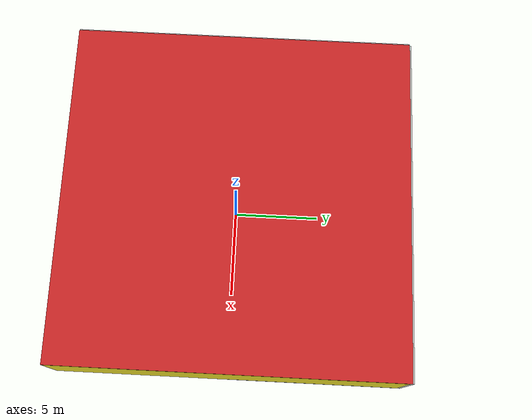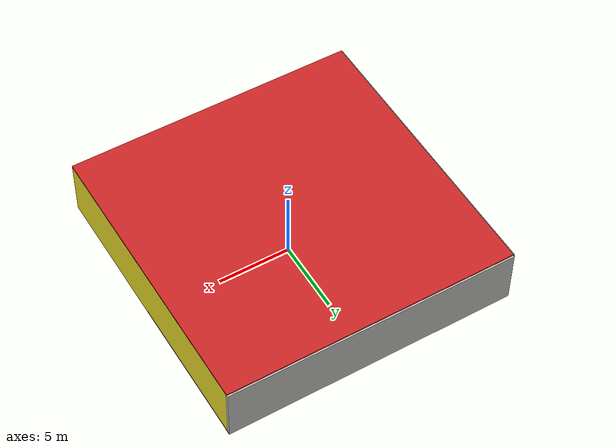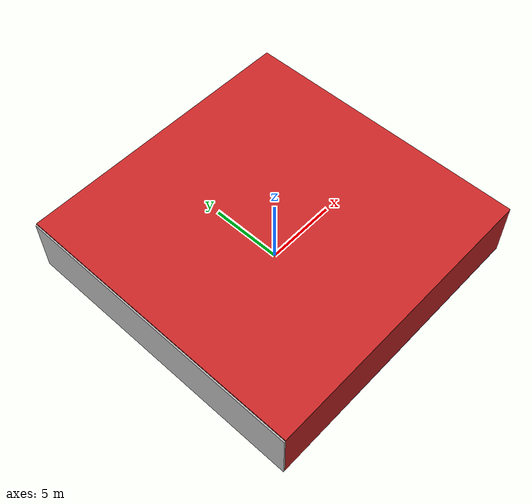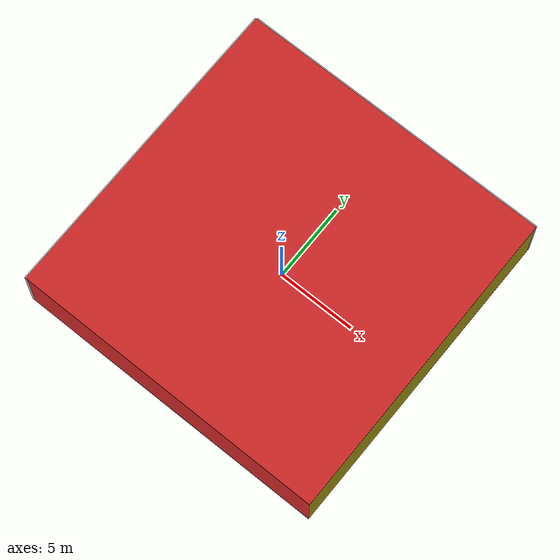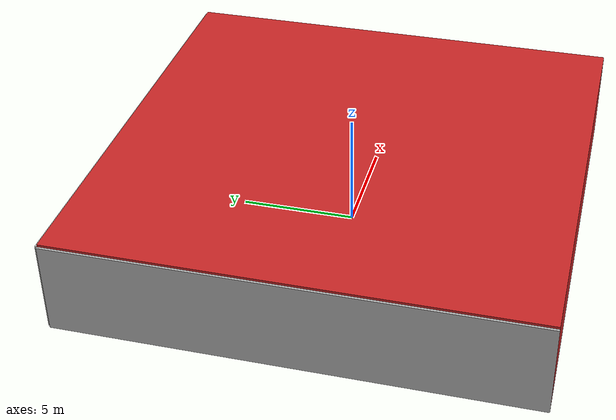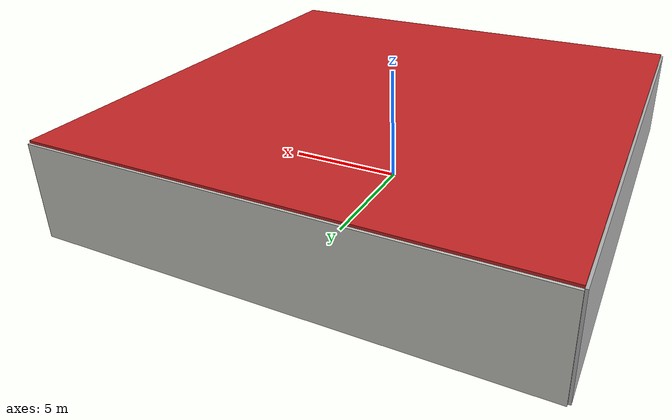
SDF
<sdf version="1.4">
 <world name="default">
  <physics type="ode">
   <max_step_size>0.001</max_step_size>
   <real_time_factor>1</real_time_factor>
   <real_time_update_rate>1000</real_time_update_rate>
   <gravity>0 0 -9.8</gravity>
  </physics>
  <scene><ambient>0.4 0.4 0.4 1</ambient><background>0.7 0.7 0.7 1</background><shadows>1</shadows></scene>
  <model name="Surrounding">
   <static>1</static>
   <link name="Ceiling">
    <collision name="Ceiling_Collision"><geometry><box><size>20 20 0.1</size></box></geometry></collision>
    <visual name="Ceiling_Visual">
     <geometry><box><size>20 20 0.1</size></box></geometry>
     <material>
      <script><uri>file://media/materials/scripts/gazebo.material</uri><name>Gazebo/Red</name></script>
     </material>
    </visual>
    <pose>0 0 4.05 0 0 0</pose>
   </link>
   <link name="Wall_South">
    <collision name="Wall_South_Collision">
     <geometry><box><size>20 0 4</size></box></geometry>
     <pose>0 0 2 0 -0 0</pose>
    </collision>
    <visual name="Wall_South_Visual">
     <pose>0 0 2 0 -0 0</pose>
     <geometry><box><size>20 0 4</size></box></geometry>
     <material>
      <script><uri>file://media/materials/scripts/gazebo.material</uri><name>Gazebo/RedGlow</name></script>
     </material>
    </visual>
    <velocity_decay><linear>0</linear><angular>0</angular></velocity_decay>
    <pose>0 -10 0 0 -0 0</pose>
   </link>
   <link name="Wall_East">
    <collision name="Wall_21_Collision">
     <geometry><box><size>20 0 4</size></box></geometry>
     <pose>0 0 2 0 -0 0</pose>
    </collision>
    <visual name="Wall_21_Visual">
     <pose>0 0 2 0 -0 0</pose>
     <geometry><box><size>20 0 4</size></box></geometry>
     <material>
      <script><uri>file://media/materials/scripts/gazebo.material</uri><name>Gazebo/Yellow</name></script>
     </material>
    </visual>
    <velocity_decay><linear>0</linear><angular>0</angular></velocity_decay>
    <pose>10 0 0 0 -0 1.5708</pose>
   </link>
   <link name="Wall_North">
    <collision name="Wall_22_Collision">
     <geometry><box><size>20 0.2 4</size></box></geometry>
     <pose>0 0 2 0 -0 0</pose>
    </collision>
    <visual name="Wall_22_Visual">
     <pose>0 0 2 0 -0 0</pose>
     <geometry><box><size>20 0.2 4</size></box></geometry>
     <material>
      <script><uri>file://media/materials/scripts/gazebo.material</uri><name>Gazebo/CeilingTiled</name></script>
     </material>
    </visual>
    <velocity_decay><linear>0</linear><angular>0</angular></velocity_decay>
    <pose>0 10 0 0 -0 0</pose>
   </link>
   <link name="Wall_West">
    <collision name="Wall_23_Collision">
     <geometry><box><size>20 0.2 4</size></box></geometry>
     <pose>0 0 2 0 -0 0</pose>
    </collision>
    <visual name="Wall_23_Visual">
     <pose>0 0 2 0 -0 0</pose>
     <geometry><box><size>20 0.2 4</size></box></geometry>
     <material>
      <script><uri>file://media/materials/scripts/gazebo.material</uri><name>Gazebo/LightOn</name></script>
     </material>
    </visual>
    <velocity_decay><linear>0</linear><angular>0</angular></velocity_decay>
    <pose>-10 0 0 0 0 -1.5708</pose>
   </link>
   <link name="Ground_link">
    <collision name="collision">
     <pose>0 0 .05 0 -0 0</pose>
     <geometry><box><size>20 20 0.1</size></box></geometry>
    </collision>
    <visual name="visual">
     <pose>0 0 .05 0 -0 0</pose>
     <geometry><box><size>20 20 0.1</size></box></geometry>
     <material>
      <script><uri>file://media/materials/scripts/gazebo.material</uri><name>Gazebo/BlueTransparent</name></script>
     </material>
    </visual>
   </link>
   <static>1</static>
  </model>
  <spherical_coordinates>
   <surface_model>EARTH_WGS84</surface_model>
   <latitude_deg>0</latitude_deg>
   <longitude_deg>0</longitude_deg>
   <elevation>0</elevation>
   <heading_deg>0</heading_deg>
  </spherical_coordinates>
  <light name="lightball_0" type="diffuse">
   <diffuse>0.8 0.8 0.8 1</diffuse>
   <specular>0.2 0.2 0.2 1</specular>
   <attenuation>
    <range>100</range>
    <constant>0.7</constant>
    <linear>0.01</linear>
    <quadratic>0.001</quadratic>
   </attenuation>
   <direction>-0.5 0.1 -0.9</direction>
   <pose>0.153282291295 -3.83142051962 2.03434788212 0 0 0</pose>
  </light>
  <light name="lightball_1" type="diffuse">
   <diffuse>0.8 0.8 0.8 1</diffuse>
   <specular>0.2 0.2 0.2 1</specular>
   <attenuation>
    <range>100</range>
    <constant>0.7</constant>
    <linear>0.01</linear>
    <quadratic>0.001</quadratic>
   </attenuation>
   <direction>-0.5 0.1 -0.9</direction>
   <pose>-9.36720161813 -5.68489553909 3.63640859677 0 0 0</pose>
  </light>
  <light name="lightball_2" type="diffuse">
   <diffuse>0.8 0.8 0.8 1</diffuse>
   <specular>0.2 0.2 0.2 1</specular>
   <attenuation>
    <range>100</range>
    <constant>0.7</constant>
    <linear>0.01</linear>
    <quadratic>0.001</quadratic>
   </attenuation>
   <direction>-0.5 0.1 -0.9</direction>
   <pose>4.47040454264 -6.58586598555 1.31329977874 0 0 0</pose>
  </light>
  <light name="lightball_3" type="diffuse">
   <diffuse>0.8 0.8 0.8 1</diffuse>
   <specular>0.2 0.2 0.2 1</specular>
   <attenuation>
    <range>100</range>
    <constant>0.7</constant>
    <linear>0.01</linear>
    <quadratic>0.001</quadratic>
   </attenuation>
   <direction>-0.5 0.1 -0.9</direction>
   <pose>1.88433242353 1.6435910452 0.512219933243 0 0 0</pose>
  </light>
  <light name="lightball_4" type="diffuse">
   <diffuse>0.8 0.8 0.8 1</diffuse>
   <specular>0.2 0.2 0.2 1</specular>
   <attenuation>
    <range>100</range>
    <constant>0.7</constant>
    <linear>0.01</linear>
    <quadratic>0.001</quadratic>
   </attenuation>
   <direction>-0.5 0.1 -0.9</direction>
   <pose>2.52491092622 1.46103309826 2.60643471629 0 0 0</pose>
  </light>
  <light name="lightball_5" type="diffuse">
   <diffuse>0.8 0.8 0.8 1</diffuse>
   <specular>0.2 0.2 0.2 1</specular>
   <attenuation>
    <range>100</range>
    <constant>0.7</constant>
    <linear>0.01</linear>
    <quadratic>0.001</quadratic>
   </attenuation>
   <direction>-0.5 0.1 -0.9</direction>
   <pose>-6.4879960547 -4.42950876379 1.8557533492 0 0 0</pose>
  </light>
  <light name="lightball_6" type="diffuse">
   <diffuse>0.8 0.8 0.8 1</diffuse>
   <specular>0.2 0.2 0.2 1</specular>
   <attenuation>
    <range>100</range>
    <constant>0.7</constant>
    <linear>0.01</linear>
    <quadratic>0.001</quadratic>
   </attenuation>
   <direction>-0.5 0.1 -0.9</direction>
   <pose>-4.64576642935 9.68228363484 3.59806368324 0 0 0</pose>
  </light>
  <light name="lightball_7" type="diffuse">
   <diffuse>0.8 0.8 0.8 1</diffuse>
   <specular>0.2 0.2 0.2 1</specular>
   <attenuation>
    <range>100</range>
    <constant>0.7</constant>
    <linear>0.01</linear>
    <quadratic>0.001</quadratic>
   </attenuation>
   <direction>-0.5 0.1 -0.9</direction>
   <pose>6.54167829596 4.57623233017 1.09168828869 0 0 0</pose>
  </light>
  <light name="lightball_8" type="diffuse">
   <diffuse>0.8 0.8 0.8 1</diffuse>
   <specular>0.2 0.2 0.2 1</specular>
   <attenuation>
    <range>100</range>
    <constant>0.7</constant>
    <linear>0.01</linear>
    <quadratic>0.001</quadratic>
   </attenuation>
   <direction>-0.5 0.1 -0.9</direction>
   <pose>9.44780482611 9.68491144221 2.67501114921 0 0 0</pose>
  </light>
  <light name="lightball_9" type="diffuse">
   <diffuse>0.8 0.8 0.8 1</diffuse>
   <specular>0.2 0.2 0.2 1</specular>
   <attenuation>
    <range>100</range>
    <constant>0.7</constant>
    <linear>0.01</linear>
    <quadratic>0.001</quadratic>
   </attenuation>
   <direction>-0.5 0.1 -0.9</direction>
   <pose>1.06553507658 0.556430678714 1.43258965018 0 0 0</pose>
  </light>
  <light name="lightball_10" type="diffuse">
   <diffuse>0.8 0.8 0.8 1</diffuse>
   <specular>0.2 0.2 0.2 1</specular>
   <attenuation>
    <range>100</range>
    <constant>0.7</constant>
    <linear>0.01</linear>
    <quadratic>0.001</quadratic>
   </attenuation>
   <direction>-0.5 0.1 -0.9</direction>
   <pose>-6.4989516538 9.05310723999 2.21177377947 0 0 0</pose>
  </light>
  <light name="lightball_11" type="diffuse">
   <diffuse>0.8 0.8 0.8 1</diffuse>
   <specular>0.2 0.2 0.2 1</specular>
   <attenuation>
    <range>100</range>
    <constant>0.7</constant>
    <linear>0.01</linear>
    <quadratic>0.001</quadratic>
   </attenuation>
   <direction>-0.5 0.1 -0.9</direction>
   <pose>9.50926321248 8.25095734658 3.18299372854 0 0 0</pose>
  </light>
  <include>
   <uri>model://textured_shapes</uri>
   <pose>-7.59294960581 -1.41986581117 0 0 0 0.598881580519</pose>
  </include>
  <include>
   <uri>model://textured_shapes</uri>
   <pose>-3.75947126796 4.55035191234 0 0 0 2.730834893</pose>
  </include>
  <include>
   <uri>model://textured_shapes</uri>
   <pose>-1.47845093276 2.29853913809 0 0 0 0.544784869903</pose>
  </include>
  <include><uri>model://cabinet</uri><pose>5.27814992441 1.55228647877 0 0 0 0.596685782503</pose></include>
  <include><uri>model://cabinet</uri><pose>7.57848052059 1.1558339433 0 0 0 0.185840284085</pose></include>
 </world>
</sdf>

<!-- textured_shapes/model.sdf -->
<sdf version="1.6">
  <model name="textured_shapes">
    <pose>0 0 0.5 0 0 0</pose>
    <link name="box">
      <pose>0 -1.5 0 0 0 0</pose>
      <collision name="collision">
        <geometry>
          <box>
            <size>1 1 1</size>
          </box>
        </geometry>
      </collision>
      <visual name="visual">
        <geometry>
          <box>
            <size>1 1 1</size>
          </box>
        </geometry>
        <material>
          <script>
            <uri>model://../model_source/models/textured_shapes/materials/scripts</uri>
            <uri>model://../model_source/models/textured_shapes/materials/textures</uri>
            <name>TexturedShape/Squares</name>
          </script>
        </material>
      </visual>
    </link>
    <link name="sphere">
      <collision name="collision">
        <geometry>
          <sphere>
            <radius>0.5</radius>
          </sphere>
        </geometry>
      </collision>
      <visual name="visual">
        <geometry>
          <sphere>
            <radius>0.5</radius>
          </sphere>
        </geometry>
        <material>
          <script>
            <uri>model://../model_source/models/textured_shapes/materials/scripts</uri>
            <uri>model://../model_source/models/textured_shapes/materials/textures</uri>
            <name>TexturedShape/Squares</name>
          </script>
        </material>
      </visual>
    </link>
    <link name="cylinder">
      <pose>0 1.5 0 0 0 0</pose>
      <collision name="collision">
        <geometry>
          <cylinder>
            <radius>0.5</radius>
            <length>1</length>
          </cylinder>
        </geometry>
      </collision>
      <visual name="visual">
        <geometry>
          <cylinder>
            <radius>0.5</radius>
            <length>1</length>
          </cylinder>
        </geometry>
        <material>
          <script>
            <uri>model://../model_source/models/textured_shapes/materials/scripts</uri>
            <uri>model://../model_source/models/textured_shapes/materials/textures</uri>
            <name>TexturedShape/Squares</name>
          </script>
        </material>
      </visual>
    </link>
  </model>
</sdf>

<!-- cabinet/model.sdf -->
<sdf version="1.5">
  <model name="cabinet">
    <static>true</static>
    <link name="cabinet_bottom_plate">
      <inertial>
        <pose>0 0 -1 0 0 0</pose>
        <inertia>
          <ixx>2.050000</ixx>
          <ixy>0</ixy>
          <ixz>0</ixz>
          <iyy>2.050000</iyy>
          <iyz>0</iyz>
          <izz>2.050000</izz>
        </inertia>
        <mass>25.000000</mass>
      </inertial>
      <collision name="cabinet_bottom_plate_geom">
        <pose>0 0 0.010000 0 0 0</pose>
        <geometry>
          <box>
            <size>0.450000 0.450000 0.020000</size>
          </box>
        </geometry>
      </collision>
      <visual name="cabinet_bottom_plate_geom_visual">
        <pose>0 0 0.010000 0 0 0</pose>
        <geometry>
          <box>
            <size>0.450000 0.450000 0.020000</size>
          </box>
        </geometry>
        <material>
          <script>
            <uri>model://media/materials/scripts/gazebo.material</uri>
            <name>Gazebo/Wood</name>
          </script>
        </material>
      </visual>
      <collision name="cabinet_bottom_plate_geom_cabinet_back_plate">
        <pose>0.235000 0 0.510000 0 0 0</pose>
        <geometry>
          <box>
            <size>0.020000 0.450000 1.020000</size>
          </box>
        </geometry>
      </collision>
      <visual name="cabinet_bottom_plate_geom_cabinet_back_plate_visual">
        <pose>0.235000 0 0.510000 0 0 0</pose>
        <geometry>
          <box>
            <size>0.020000 0.450000 1.020000</size>
          </box>
        </geometry>
        <material>
          <script>
            <uri>model://media/materials/scripts/gazebo.material</uri>
            <name>Gazebo/Wood</name>
          </script>
        </material>
      </visual>
      <collision name="cabinet_bottom_plate_geom_cabinet_left_plate">
        <pose>0 0.235000 0.510000 0 0 0</pose>
        <geometry>
          <box>
            <size>0.450000 0.020000 1.020000</size>
          </box>
        </geometry>
      </collision>
      <visual name="cabinet_bottom_plate_geom_cabinet_left_plate_visual">
        <pose>0 0.235000 0.510000 0 0 0</pose>
        <geometry>
          <box>
            <size>0.450000 0.020000 1.020000</size>
          </box>
        </geometry>
        <material>
          <script>
            <uri>model://media/materials/scripts/gazebo.material</uri>
            <name>Gazebo/Wood</name>
          </script>
        </material>
      </visual>
      <collision name="cabinet_bottom_plate_geom_cabinet_middle_plate">
        <pose>0 0 0.510000 0 0 0</pose>
        <geometry>
          <box>
            <size>0.450000 0.450000 0.020000</size>
          </box>
        </geometry>
      </collision>
      <visual name="cabinet_bottom_plate_geom_cabinet_middle_plate_visual">
        <pose>0 0 0.510000 0 0 0</pose>
        <geometry>
          <box>
            <size>0.450000 0.450000 0.020000</size>
          </box>
        </geometry>
        <material>
          <script>
            <uri>model://media/materials/scripts/gazebo.material</uri>
            <name>Gazebo/Wood</name>
          </script>
        </material>
      </visual>
      <collision name="cabinet_bottom_plate_geom_cabinet_right_plate">
        <pose>0 -0.235000 0.510000 0 0 0</pose>
        <geometry>
          <box>
            <size>0.450000 0.020000 1.020000</size>
          </box>
        </geometry>
      </collision>
      <visual name="cabinet_bottom_plate_geom_cabinet_right_plate_visual">
        <pose>0 -0.235000 0.510000 0 0 0</pose>
        <geometry>
          <box>
            <size>0.450000 0.020000 1.020000</size>
          </box>
        </geometry>
        <material>
          <script>
            <uri>model://media/materials/scripts/gazebo.material</uri>
            <name>Gazebo/Wood</name>
          </script>
        </material>
      </visual>
      <collision name="cabinet_bottom_plate_geom_cabinet_top_plate">
        <pose>0 0 1.010000 0 0 0</pose>
        <geometry>
          <box>
            <size>0.450000 0.450000 0.020000</size>
          </box>
        </geometry>
      </collision>
      <visual name="cabinet_bottom_plate_geom_cabinet_top_plate_visual">
        <pose>0 0 1.010000 0 0 0</pose>
        <geometry>
          <box>
            <size>0.450000 0.450000 0.020000</size>
          </box>
        </geometry>
        <material>
          <script>
            <uri>model://media/materials/scripts/gazebo.material</uri>
            <name>Gazebo/Wood</name>
          </script>
        </material>
      </visual>
    </link>
  </model>
</sdf>
